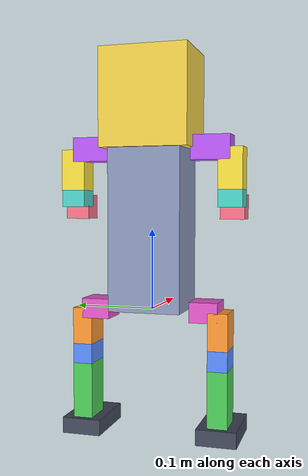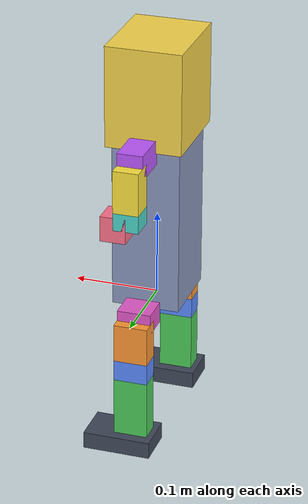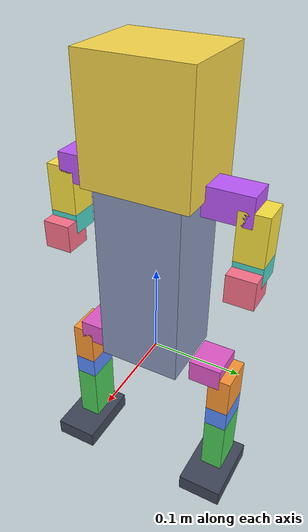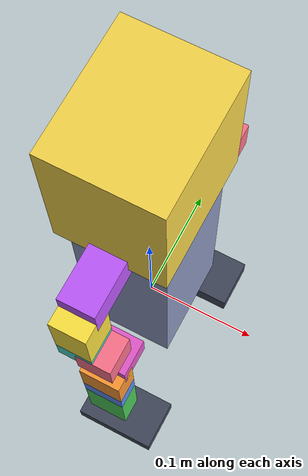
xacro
<robot xmlns:xacro="http://www.ros.org/wiki/xacro" name="pikachu_sample_links">
  <!-- 骨盆半宽 -->
  <!-- 肩高/躯干高 -->
  <!-- 躯干前后厚 -->
  <!-- 躯干左右宽 -->

  <!-- 大腿长(重点) -->
  <!-- 小腿长(重点) -->

  <material name="torso_blue"><color rgba="0.55 0.60 0.75 1"/></material>
  <material name="head_yellow"><color rgba="0.98 0.85 0.30 1"/></material>
  <material name="leg_hip_pitch"><color rgba="0.90 0.35 0.80 1"/></material>
  <material name="leg_hip_roll"><color rgba="1.00 0.60 0.20 1"/></material>
  <material name="leg_hip_yaw"><color rgba="0.35 0.55 1.00 1"/></material>
  <material name="leg_knee"><color rgba="0.30 0.80 0.35 1"/></material>
  <material name="leg_ankle"><color rgba="0.25 0.28 0.35 1"/></material>
  <material name="arm_pitch"><color rgba="0.75 0.35 1.00 1"/></material>
  <material name="arm_roll"><color rgba="1.00 0.90 0.25 1"/></material>
  <material name="arm_yaw"><color rgba="0.30 0.85 0.80 1"/></material>
  <material name="arm_elbow"><color rgba="1.00 0.45 0.55 1"/></material>

  <link name="base_link"><visual><origin xyz="0 0 0.1" rpy="0 0 0"/><geometry><box size="0.08 0.09 0.2"/></geometry><material name="torso_blue"/></visual><inertial><origin xyz="0.000000000 0.000000000 0.100000000" rpy="0.000000000 0.000000000 0.000000000"/><mass value="2.16000"/><inertia ixx="0.008658" iyy="0.008352" izz="0.002610" ixy="0" ixz="0" iyz="0"/></inertial></link>

  <joint name="head_joint" type="revolute"><origin xyz="0 0 0.26" rpy="0 0 0"/><parent link="base_link"/><child link="head_link"/><axis xyz="0 1 0"/><limit lower="-0.8" upper="0.8" effort="2"/><velocity>2</velocity></joint>
  <link name="head_link"><visual><origin xyz="0 0 0" rpy="0 0 0"/><geometry><box size="0.09 0.11 0.12"/></geometry><material name="head_yellow"/></visual><inertial><origin xyz="0.000000000 0.000000000 0.000000000" rpy="0.000000000 0.000000000 0.000000000"/><mass value="1.78200"/><inertia ixx="0.003935" iyy="0.003341" izz="0.003000" ixy="0" ixz="0" iyz="0"/></inertial></link>

  <joint name="left_hip_pitch_joint" type="revolute"><origin xyz="0 0.0515 0" rpy="0 0 0"/><parent link="base_link"/><child link="left_hip_pitch_link"/><axis xyz="0 -1 0"/><limit lower="0" upper="2.44" effort="12.5"/><velocity>2</velocity></joint>
  <joint name="right_hip_pitch_joint" type="revolute"><origin xyz="0 -0.0515 0" rpy="0 0 0"/><parent link="base_link"/><child link="right_hip_pitch_link"/><axis xyz="0 -1 0"/><limit lower="0" upper="2.44" effort="12.5"/><velocity>2</velocity></joint>
  <joint name="left_arm_pitch_joint" type="revolute"><origin xyz="0 0.0515 0.2" rpy="0 0 0"/><parent link="base_link"/><child link="left_arm_pitch_link"/><axis xyz="0 -1 0"/><limit lower="-1.57" upper="1.57" effort="2"/><velocity>2</velocity></joint>
  <joint name="right_arm_pitch_joint" type="revolute"><origin xyz="0 -0.0515 0.2" rpy="0 0 0"/><parent link="base_link"/><child link="right_arm_pitch_link"/><axis xyz="0 -1 0"/><limit lower="-1.57" upper="1.57" effort="2"/><velocity>2</velocity></joint>

    <link name="left_hip_pitch_link"><visual><origin xyz="0 0.01775 0" rpy="0 0 0"/><geometry><box size="0.04 0.0355 0.025"/></geometry><material name="leg_hip_pitch"/></visual><inertial><origin xyz="0.000000000 0.017750000 0.000000000" rpy="0.000000000 0.000000000 0.000000000"/><mass value="0.05325"/><inertia ixx="0.000008" iyy="0.000010" izz="0.000013" ixy="0" ixz="0" iyz="0"/></inertial></link>
    <joint name="left_hip_roll_joint" type="revolute"><origin xyz="0 0.0355 0" rpy="0 0 0"/><parent link="left_hip_pitch_link"/><child link="left_hip_roll_link"/><axis xyz="1 0 0"/><limit lower="-0.09" upper="0.26" effort="9"/><velocity>1</velocity></joint>
    <link name="left_hip_roll_link"><visual><origin xyz="0 0 -0.023" rpy="0 0 0"/><geometry><box size="0.04 0.025 0.046"/></geometry><material name="leg_hip_roll"/></visual><inertial><origin xyz="0.000000000 0.000000000 -0.023000000" rpy="0.000000000 0.000000000 0.000000000"/><mass value="0.06900"/><inertia ixx="0.000016" iyy="0.000021" izz="0.000013" ixy="0" ixz="0" iyz="0"/></inertial></link>
    <joint name="left_hip_yaw_joint" type="revolute"><origin xyz="0 0 -0.046" rpy="0 0 0"/><parent link="left_hip_roll_link"/><child link="left_hip_yaw_link"/><axis xyz="0 0 1"/><limit lower="-0.09" upper="0.26" effort="9"/><velocity>1</velocity></joint>
    <link name="left_hip_yaw_link"><visual><origin xyz="0 0 -0.0125" rpy="0 0 0"/><geometry><box size="0.04 0.025 0.025"/></geometry><material name="leg_hip_yaw"/></visual><inertial><origin xyz="0.000000000 0.000000000 -0.012500000" rpy="0.000000000 0.000000000 0.000000000"/><mass value="0.03750"/><inertia ixx="0.000004" iyy="0.000007" izz="0.000007" ixy="0" ixz="0" iyz="0"/></inertial></link>
    <joint name="left_knee_joint" type="revolute"><origin xyz="0 0 -0.025" rpy="0 0 0"/><parent link="left_hip_yaw_link"/><child link="left_knee_link"/><axis xyz="0 1 0"/><limit lower="0" upper="1.57" effort="12.5"/><velocity>3</velocity></joint>
    <link name="left_knee_link"><visual><origin xyz="0 0 -0.035" rpy="0 0 0"/><geometry><box size="0.04 0.025 0.070"/></geometry><material name="leg_knee"/></visual><inertial><origin xyz="0.000000000 0.000000000 -0.035000000" rpy="0.000000000 0.000000000 0.000000000"/><mass value="0.10500"/><inertia ixx="0.000048" iyy="0.000057" izz="0.000019" ixy="0" ixz="0" iyz="0"/></inertial></link>
    <joint name="left_ankle_joint" type="revolute"><origin xyz="0 0 -0.07" rpy="0 0 0"/><parent link="left_knee_link"/><child link="left_ankle_link"/><axis xyz="0 -1 0"/><limit lower="-0.52" upper="1.05" effort="9"/><velocity>2</velocity></joint>
    <link name="left_ankle_link"><visual><origin xyz="0.013333333333333334 0 -0.01" rpy="0 0 0"/><geometry><box size="0.08 0.05 0.02"/></geometry><material name="leg_ankle"/></visual><inertial><origin xyz="0.013333333 0.000000000 -0.010000000" rpy="0.000000000 0.000000000 0.000000000"/><mass value="0.12000"/><inertia ixx="0.000029" iyy="0.000068" izz="0.000089" ixy="0" ixz="0" iyz="0"/></inertial></link>

    <link name="right_hip_pitch_link"><visual><origin xyz="0 -0.01775 0" rpy="0 0 0"/><geometry><box size="0.04 0.0355 0.025"/></geometry><material name="leg_hip_pitch"/></visual><inertial><origin xyz="0.000000000 -0.017750000 0.000000000" rpy="0.000000000 0.000000000 0.000000000"/><mass value="0.05325"/><inertia ixx="0.000008" iyy="0.000010" izz="0.000013" ixy="0" ixz="0" iyz="0"/></inertial></link>
    <joint name="right_hip_roll_joint" type="revolute"><origin xyz="0 -0.0355 0" rpy="0 0 0"/><parent link="right_hip_pitch_link"/><child link="right_hip_roll_link"/><axis xyz="-1 0 0"/><limit lower="-0.09" upper="0.26" effort="9"/><velocity>1</velocity></joint>
    <link name="right_hip_roll_link"><visual><origin xyz="0 0 -0.023" rpy="0 0 0"/><geometry><box size="0.04 0.025 0.046"/></geometry><material name="leg_hip_roll"/></visual><inertial><origin xyz="0.000000000 0.000000000 -0.023000000" rpy="0.000000000 0.000000000 0.000000000"/><mass value="0.06900"/><inertia ixx="0.000016" iyy="0.000021" izz="0.000013" ixy="0" ixz="0" iyz="0"/></inertial></link>
    <joint name="right_hip_yaw_joint" type="revolute"><origin xyz="0 0 -0.046" rpy="0 0 0"/><parent link="right_hip_roll_link"/><child link="right_hip_yaw_link"/><axis xyz="0 0 -1"/><limit lower="-0.09" upper="0.26" effort="9"/><velocity>1</velocity></joint>
    <link name="right_hip_yaw_link"><visual><origin xyz="0 0 -0.0125" rpy="0 0 0"/><geometry><box size="0.04 0.025 0.025"/></geometry><material name="leg_hip_yaw"/></visual><inertial><origin xyz="0.000000000 0.000000000 -0.012500000" rpy="0.000000000 0.000000000 0.000000000"/><mass value="0.03750"/><inertia ixx="0.000004" iyy="0.000007" izz="0.000007" ixy="0" ixz="0" iyz="0"/></inertial></link>
    <joint name="right_knee_joint" type="revolute"><origin xyz="0 0 -0.025" rpy="0 0 0"/><parent link="right_hip_yaw_link"/><child link="right_knee_link"/><axis xyz="0 1 0"/><limit lower="0" upper="1.57" effort="12.5"/><velocity>3</velocity></joint>
    <link name="right_knee_link"><visual><origin xyz="0 0 -0.035" rpy="0 0 0"/><geometry><box size="0.04 0.025 0.070"/></geometry><material name="leg_knee"/></visual><inertial><origin xyz="0.000000000 0.000000000 -0.035000000" rpy="0.000000000 0.000000000 0.000000000"/><mass value="0.10500"/><inertia ixx="0.000048" iyy="0.000057" izz="0.000019" ixy="0" ixz="0" iyz="0"/></inertial></link>
    <joint name="right_ankle_joint" type="revolute"><origin xyz="0 0 -0.07" rpy="0 0 0"/><parent link="right_knee_link"/><child link="right_ankle_link"/><axis xyz="0 -1 0"/><limit lower="-0.52" upper="1.05" effort="9"/><velocity>2</velocity></joint>
    <link name="right_ankle_link"><visual><origin xyz="0.013333333333333334 0 -0.01" rpy="0 0 0"/><geometry><box size="0.08 0.05 0.02"/></geometry><material name="leg_ankle"/></visual><inertial><origin xyz="0.013333333 0.000000000 -0.010000000" rpy="0.000000000 0.000000000 0.000000000"/><mass value="0.12000"/><inertia ixx="0.000029" iyy="0.000068" izz="0.000089" ixy="0" ixz="0" iyz="0"/></inertial></link>

    <link name="left_arm_pitch_link"><visual><origin xyz="0 0.0245 0" rpy="0 0 0"/><geometry><box size="0.03 0.049 0.03"/></geometry><material name="arm_pitch"/></visual><inertial><origin xyz="0.000000000 0.024500000 0.000000000" rpy="0.000000000 0.000000000 0.000000000"/><mass value="0.06615"/><inertia ixx="0.000018" iyy="0.000010" izz="0.000018" ixy="0" ixz="0" iyz="0"/></inertial></link>
    <joint name="left_arm_roll_joint" type="revolute"><origin xyz="0 0.049 0" rpy="0 0 0"/><parent link="left_arm_pitch_link"/><child link="left_arm_roll_link"/><axis xyz="1 0 0"/><limit lower="-1.57" upper="1.57" effort="2"/><velocity>2</velocity></joint>
    <link name="left_arm_roll_link"><visual><origin xyz="0 0 -0.0255" rpy="0 0 0"/><geometry><box size="0.03 0.03 0.051"/></geometry><material name="arm_roll"/></visual><inertial><origin xyz="0.000000000 0.000000000 -0.025500000" rpy="0.000000000 0.000000000 0.000000000"/><mass value="0.06885"/><inertia ixx="0.000020" iyy="0.000020" izz="0.000010" ixy="0" ixz="0" iyz="0"/></inertial></link>
    <joint name="left_arm_yaw_joint" type="revolute"><origin xyz="0 0 -0.051" rpy="0 0 0"/><parent link="left_arm_roll_link"/><child link="left_arm_yaw_link"/><axis xyz="0 0 1"/><limit lower="-1.57" upper="1.57" effort="2"/><velocity>2</velocity></joint>
    <link name="left_arm_yaw_link"><visual><origin xyz="0 0 -0.0105" rpy="0 0 0"/><geometry><box size="0.03 0.03 0.021"/></geometry><material name="arm_yaw"/></visual><inertial><origin xyz="0.000000000 0.000000000 -0.010500000" rpy="0.000000000 0.000000000 0.000000000"/><mass value="0.02835"/><inertia ixx="0.000003" iyy="0.000003" izz="0.000004" ixy="0" ixz="0" iyz="0"/></inertial></link>
    <joint name="left_elbow_joint" type="revolute"><origin xyz="0 0 -0.021" rpy="0 -1.57 0"/><parent link="left_arm_yaw_link"/><child link="left_elbow_link"/><axis xyz="0 -1 0"/><limit lower="-1.57" upper="1.57" effort="2"/><velocity>2</velocity></joint>
    <link name="left_elbow_link"><visual><origin xyz="0 0 -0.015" rpy="0 0 0"/><geometry><box size="0.03 0.03 0.03"/></geometry><material name="arm_elbow"/></visual><inertial><origin xyz="0.000000000 0.000000000 -0.015000000" rpy="0.000000000 0.000000000 0.000000000"/><mass value="0.04050"/><inertia ixx="0.000006" iyy="0.000006" izz="0.000006" ixy="0" ixz="0" iyz="0"/></inertial></link>

    <link name="right_arm_pitch_link"><visual><origin xyz="0 -0.0245 0" rpy="0 0 0"/><geometry><box size="0.03 0.049 0.03"/></geometry><material name="arm_pitch"/></visual><inertial><origin xyz="0.000000000 -0.024500000 0.000000000" rpy="0.000000000 0.000000000 0.000000000"/><mass value="0.06615"/><inertia ixx="0.000018" iyy="0.000010" izz="0.000018" ixy="0" ixz="0" iyz="0"/></inertial></link>
    <joint name="right_arm_roll_joint" type="revolute"><origin xyz="0 -0.049 0" rpy="0 0 0"/><parent link="right_arm_pitch_link"/><child link="right_arm_roll_link"/><axis xyz="-1 0 0"/><limit lower="-1.57" upper="1.57" effort="2"/><velocity>2</velocity></joint>
    <link name="right_arm_roll_link"><visual><origin xyz="0 0 -0.0255" rpy="0 0 0"/><geometry><box size="0.03 0.03 0.051"/></geometry><material name="arm_roll"/></visual><inertial><origin xyz="0.000000000 0.000000000 -0.025500000" rpy="0.000000000 0.000000000 0.000000000"/><mass value="0.06885"/><inertia ixx="0.000020" iyy="0.000020" izz="0.000010" ixy="0" ixz="0" iyz="0"/></inertial></link>
    <joint name="right_arm_yaw_joint" type="revolute"><origin xyz="0 0 -0.051" rpy="0 0 0"/><parent link="right_arm_roll_link"/><child link="right_arm_yaw_link"/><axis xyz="0 0 -1"/><limit lower="-1.57" upper="1.57" effort="2"/><velocity>2</velocity></joint>
    <link name="right_arm_yaw_link"><visual><origin xyz="0 0 -0.0105" rpy="0 0 0"/><geometry><box size="0.03 0.03 0.021"/></geometry><material name="arm_yaw"/></visual><inertial><origin xyz="0.000000000 0.000000000 -0.010500000" rpy="0.000000000 0.000000000 0.000000000"/><mass value="0.02835"/><inertia ixx="0.000003" iyy="0.000003" izz="0.000004" ixy="0" ixz="0" iyz="0"/></inertial></link>
    <joint name="right_elbow_joint" type="revolute"><origin xyz="0 0 -0.021" rpy="0 -1.57 0"/><parent link="right_arm_yaw_link"/><child link="right_elbow_link"/><axis xyz="0 1 0"/><limit lower="-1.57" upper="1.57" effort="2"/><velocity>2</velocity></joint>
    <link name="right_elbow_link"><visual><origin xyz="0 0 -0.015" rpy="0 0 0"/><geometry><box size="0.03 0.03 0.03"/></geometry><material name="arm_elbow"/></visual><inertial><origin xyz="0.000000000 0.000000000 -0.015000000" rpy="0.000000000 0.000000000 0.000000000"/><mass value="0.04050"/><inertia ixx="0.000006" iyy="0.000006" izz="0.000006" ixy="0" ixz="0" iyz="0"/></inertial></link>

</robot>
